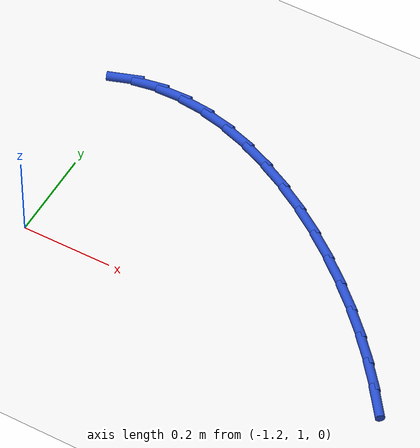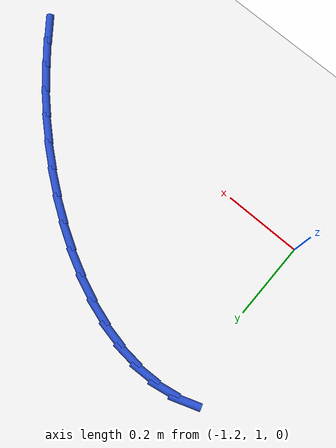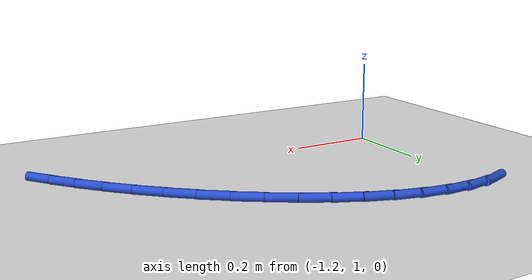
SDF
<sdf version="1.6">
 <world name="default">
  <model name="ground_plane">
   <static>1</static>
   <link name="link">
    <collision name="collision">
     <geometry><plane><normal>0 0 1</normal><size>100 100</size></plane></geometry>
     <surface><friction><ode><mu>100</mu><mu2>50</mu2></ode></friction></surface>
    </collision>
    <visual name="visual">
     <cast_shadows>0</cast_shadows>
     <geometry><plane><normal>0 0 1</normal><size>100 100</size></plane></geometry>
     <material>
      <script><uri>file://media/materials/scripts/gazebo.material</uri><name>Gazebo/WhiteGlow</name></script>
     </material>
    </visual>
   </link>
  </model>
  <model name="line">
   <link name="link_17">
    <pose>-0.36392032915399686 0.9590646627877725 0.01 0 1.57 -0.9239683729550995</pose>
    <collision name="collision">
     <geometry><cylinder><radius>0.01</radius><length>0.08</length></cylinder></geometry>
    </collision>
    <visual name="visual">
     <material>
      <script><name>Gazebo/Blue</name><uri>file://media/materials/scripts/gazebo.material</uri></script>
     </material>
     <geometry><cylinder><radius>0.01</radius><length>0.08</length></cylinder></geometry>
    </visual>
   </link>
   <link name="link_18">
    <pose>-0.40234821229528617 1.0099482861519964 0.01 0 1.57 -0.8785802039964722</pose>
    <collision name="collision">
     <geometry><cylinder><radius>0.01</radius><length>0.08</length></cylinder></geometry>
    </collision>
    <visual name="visual">
     <material>
      <script><name>Gazebo/Blue</name><uri>file://media/materials/scripts/gazebo.material</uri></script>
     </material>
     <geometry><cylinder><radius>0.01</radius><length>0.08</length></cylinder></geometry>
    </visual>
   </link>
   <link name="link_19">
    <pose>-0.4440362235540114 1.060231229322569 0.01 0 1.57 -0.8323915039414257</pose>
    <collision name="collision">
     <geometry><cylinder><radius>0.01</radius><length>0.08</length></cylinder></geometry>
    </collision>
    <visual name="visual">
     <material>
      <script><name>Gazebo/Blue</name><uri>file://media/materials/scripts/gazebo.material</uri></script>
     </material>
     <geometry><cylinder><radius>0.01</radius><length>0.08</length></cylinder></geometry>
    </visual>
   </link>
   <link name="link_20">
    <pose>-0.48922048417390623 1.1098750621138436 0.01 0 1.57 -0.7866245509526517</pose>
    <collision name="collision">
     <geometry><cylinder><radius>0.01</radius><length>0.08</length></cylinder></geometry>
    </collision>
    <visual name="visual">
     <material>
      <script><name>Gazebo/Blue</name><uri>file://media/materials/scripts/gazebo.material</uri></script>
     </material>
     <geometry><cylinder><radius>0.01</radius><length>0.08</length></cylinder></geometry>
    </visual>
   </link>
   <link name="link_21">
    <pose>-0.5377096570990855 1.1584833141723645 0.01 0 1.57 -0.7408002197860518</pose>
    <collision name="collision">
     <geometry><cylinder><radius>0.01</radius><length>0.08</length></cylinder></geometry>
    </collision>
    <visual name="visual">
     <material>
      <script><name>Gazebo/Blue</name><uri>file://media/materials/scripts/gazebo.material</uri></script>
     </material>
     <geometry><cylinder><radius>0.01</radius><length>0.08</length></cylinder></geometry>
    </visual>
   </link>
   <link name="link_22">
    <pose>-0.5890849364100343 1.2054689866412425 0.01 0 1.57 -0.6937209531793961</pose>
    <collision name="collision">
     <geometry><cylinder><radius>0.01</radius><length>0.08</length></cylinder></geometry>
    </collision>
    <visual name="visual">
     <material>
      <script><name>Gazebo/Blue</name><uri>file://media/materials/scripts/gazebo.material</uri></script>
     </material>
     <geometry><cylinder><radius>0.01</radius><length>0.08</length></cylinder></geometry>
    </visual>
   </link>
   <link name="link_23">
    <pose>-0.6429254047381235 1.2502433121083982 0.01 0 1.57 -0.6441953889357643</pose>
    <collision name="collision">
     <geometry><cylinder><radius>0.01</radius><length>0.08</length></cylinder></geometry>
    </collision>
    <visual name="visual">
     <material>
      <script><name>Gazebo/Blue</name><uri>file://media/materials/scripts/gazebo.material</uri></script>
     </material>
     <geometry><cylinder><radius>0.01</radius><length>0.08</length></cylinder></geometry>
    </visual>
   </link>
   <link name="link_24">
    <pose>-0.6988101447147254 1.2922175231617519 0.01 0 1.57 -0.5909654068831641</pose>
    <collision name="collision">
     <geometry><cylinder><radius>0.01</radius><length>0.08</length></cylinder></geometry>
    </collision>
    <visual name="visual">
     <material>
      <script><name>Gazebo/Blue</name><uri>file://media/materials/scripts/gazebo.material</uri></script>
     </material>
     <geometry><cylinder><radius>0.01</radius><length>0.08</length></cylinder></geometry>
    </visual>
   </link>
   <link name="link_25">
    <pose>-0.7563182389712112 1.3308028523892241 0.01 0 1.57 -0.5326356042828606</pose>
    <collision name="collision">
     <geometry><cylinder><radius>0.01</radius><length>0.08</length></cylinder></geometry>
    </collision>
    <visual name="visual">
     <material>
      <script><name>Gazebo/Blue</name><uri>file://media/materials/scripts/gazebo.material</uri></script>
     </material>
     <geometry><cylinder><radius>0.01</radius><length>0.08</length></cylinder></geometry>
    </visual>
   </link>
   <link name="link_26">
    <pose>-0.8150287701389525 1.3654105323787347 0.01 0 1.57 -0.4676098397224202</pose>
    <collision name="collision">
     <geometry><cylinder><radius>0.01</radius><length>0.08</length></cylinder></geometry>
    </collision>
    <visual name="visual">
     <material>
      <script><name>Gazebo/Blue</name><uri>file://media/materials/scripts/gazebo.material</uri></script>
     </material>
     <geometry><cylinder><radius>0.01</radius><length>0.08</length></cylinder></geometry>
    </visual>
   </link>
   <link name="link_27">
    <pose>-0.8745208208493209 1.395451795718204 0.01 0 1.57 -0.39404311776861234</pose>
    <collision name="collision">
     <geometry><cylinder><radius>0.01</radius><length>0.08</length></cylinder></geometry>
    </collision>
    <visual name="visual">
     <material>
      <script><name>Gazebo/Blue</name><uri>file://media/materials/scripts/gazebo.material</uri></script>
     </material>
     <geometry><cylinder><radius>0.01</radius><length>0.08</length></cylinder></geometry>
    </visual>
   </link>
   <link name="link_28">
    <pose>-0.934373473733688 1.4203378749955529 0.01 0 1.57 -0.3098331027086121</pose>
    <collision name="collision">
     <geometry><cylinder><radius>0.01</radius><length>0.08</length></cylinder></geometry>
    </collision>
    <visual name="visual">
     <material>
      <script><name>Gazebo/Blue</name><uri>file://media/materials/scripts/gazebo.material</uri></script>
     </material>
     <geometry><cylinder><radius>0.01</radius><length>0.08</length></cylinder></geometry>
    </visual>
   </link>
   <link name="link_29">
    <pose>-0.9941658114234255 1.4394800027987016 0.01 0 1.57 -0.21270294934631068</pose>
    <collision name="collision">
     <geometry><cylinder><radius>0.01</radius><length>0.08</length></cylinder></geometry>
    </collision>
    <visual name="visual">
     <material>
      <script><name>Gazebo/Blue</name><uri>file://media/materials/scripts/gazebo.material</uri></script>
     </material>
     <geometry><cylinder><radius>0.01</radius><length>0.08</length></cylinder></geometry>
    </visual>
   </link>
   <link name="link_30">
    <pose>-1.053476916549905 1.4522894117155705 0.01 0 1.57 -0.1004657522300042</pose>
    <collision name="collision">
     <geometry><cylinder><radius>0.01</radius><length>0.08</length></cylinder></geometry>
    </collision>
    <visual name="visual">
     <material>
      <script><name>Gazebo/Blue</name><uri>file://media/materials/scripts/gazebo.material</uri></script>
     </material>
     <geometry><cylinder><radius>0.01</radius><length>0.08</length></cylinder></geometry>
    </visual>
   </link>
   <link name="link_31">
    <pose>-1.1118858717444975 1.4581773343340794 0.01 0 1.57 0.02841147972754526</pose>
    <collision name="collision">
     <geometry><cylinder><radius>0.01</radius><length>0.08</length></cylinder></geometry>
    </collision>
    <visual name="visual">
     <material>
      <script><name>Gazebo/Blue</name><uri>file://media/materials/scripts/gazebo.material</uri></script>
     </material>
     <geometry><cylinder><radius>0.01</radius><length>0.08</length></cylinder></geometry>
    </visual>
   </link>
   <link name="link_32">
    <pose>-1.1689717596385751 1.456555003242149 0.01 0 1.57 0.17388586867797579</pose>
    <collision name="collision">
     <geometry><cylinder><radius>0.01</radius><length>0.08</length></cylinder></geometry>
    </collision>
    <visual name="visual">
     <material>
      <script><name>Gazebo/Blue</name><uri>file://media/materials/scripts/gazebo.material</uri></script>
     </material>
     <geometry><cylinder><radius>0.01</radius><length>0.08</length></cylinder></geometry>
    </visual>
   </link>
   <link name="link_33">
    <pose>-1.2243136628635098 1.4468336510277005 0.01 0 1.57 0.3331972399095025</pose>
    <collision name="collision">
     <geometry><cylinder><radius>0.01</radius><length>0.08</length></cylinder></geometry>
    </collision>
    <visual name="visual">
     <material>
      <script><name>Gazebo/Blue</name><uri>file://media/materials/scripts/gazebo.material</uri></script>
     </material>
     <geometry><cylinder><radius>0.01</radius><length>0.08</length></cylinder></geometry>
    </visual>
   </link>
  </model>
 </world>
</sdf>
